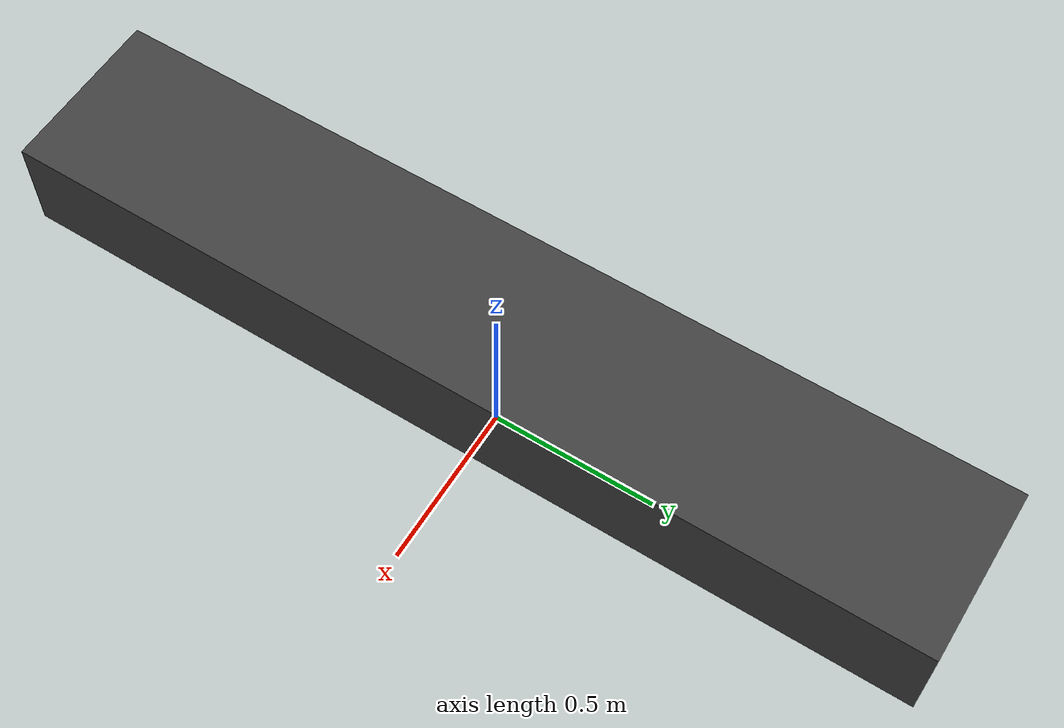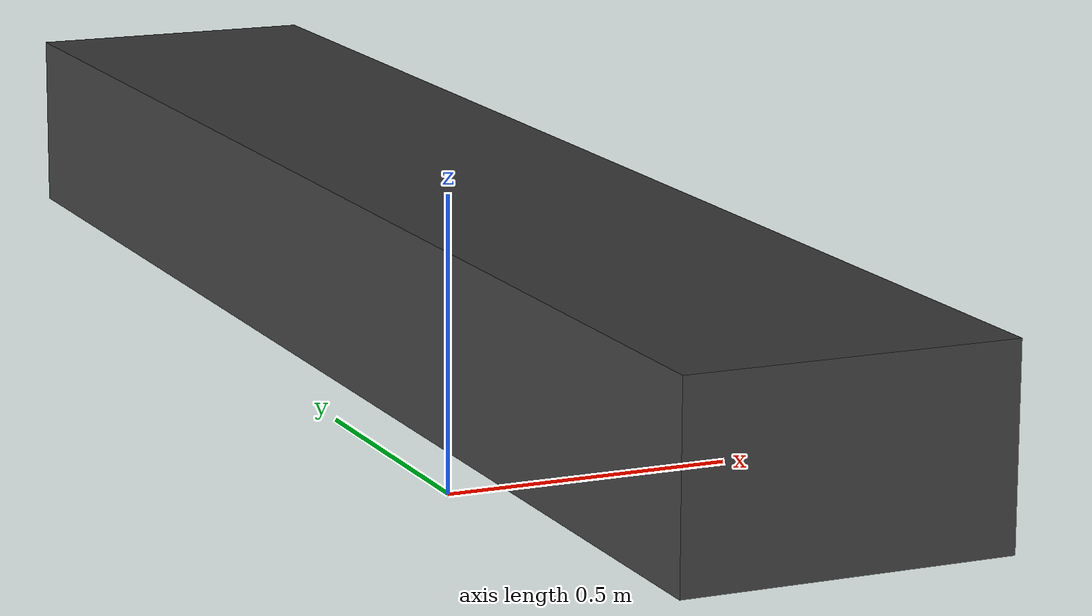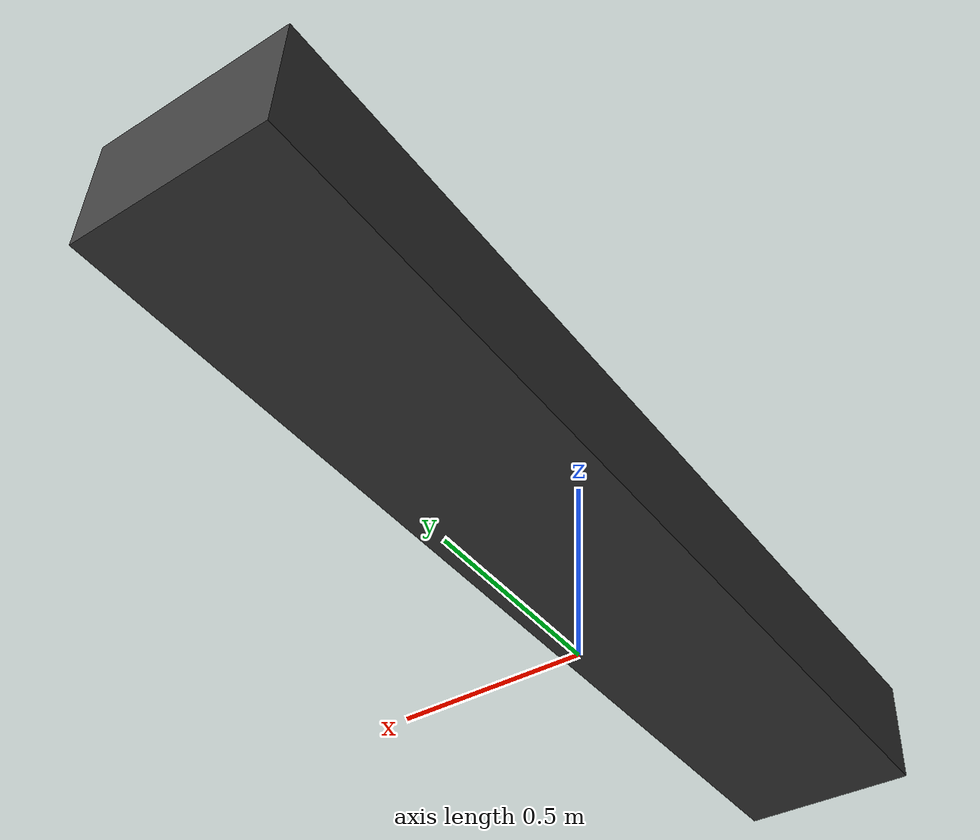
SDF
<?xml version='1.0'?>
<sdf version="1.4">
  <model name="conveyor_belt">
    <pose>0 0 0.4 0 0 0</pose>
    <static>true</static>
    <link name="link">
      <inertial>
        <mass>1.0</mass>
        <inertia> <!-- inertias are tricky to compute -->
          <!-- http://gazebosim.org/tutorials?tut=inertia&cat=build_robot -->
          <ixx>0.083</ixx>       <!-- for a box: ixx = 0.083 * mass * (y*y + z*z) -->
          <ixy>0.0</ixy>         <!-- for a box: ixy = 0 -->
          <ixz>0.0</ixz>         <!-- for a box: ixz = 0 -->
          <iyy>0.083</iyy>       <!-- for a box: iyy = 0.083 * mass * (x*x + z*z) -->
          <iyz>0.0</iyz>         <!-- for a box: iyz = 0 -->
          <izz>0.083</izz>       <!-- for a box: izz = 0.083 * mass * (x*x + y*y) -->
        </inertia>
      </inertial>
      <collision name="collision">
        <geometry>
          <box>
            <size>0.5 2.7 0.30</size>
          </box>
        </geometry>
	<surface>
          <friction>
            <ode>
              <mu>0</mu>
              <mu2>0</mu2>
            </ode>
          </friction>
        </surface>
      </collision>
      <visual name="visual">
        <geometry>
          <box>
            <size>0.5 2.7 0.30</size>
          </box>
        </geometry>
	<material>
          <ambient>0.25 0.25 0.25 1</ambient>
          <diffuse>0.25 0.25 0.25 1</diffuse>
          <specular>0 0 0 0</specular>
          <emissive>0 0 0 1</emissive>
        </material>
      </visual>
    </link>
  </model>
</sdf>
